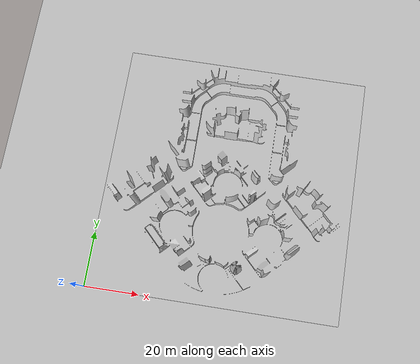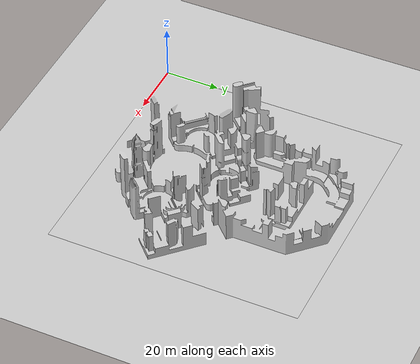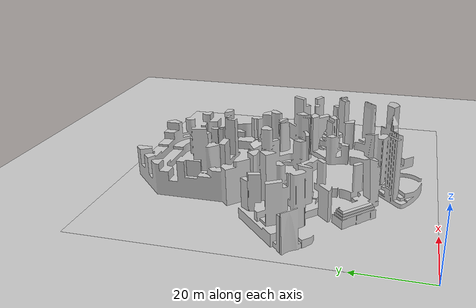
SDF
<?xml version="1.0" ?>
<sdf version="1.9">
  <world name="city_1_small_world">
    <physics type="ode">
      <max_step_size>0.001</max_step_size>
      <real_time_factor>1.0</real_time_factor>
      <real_time_update_rate>1000</real_time_update_rate>
    </physics>
    <plugin name='gz::sim::systems::Physics' filename='libgz-sim-physics-system.so'/>
    <plugin name='gz::sim::systems::UserCommands' filename='libgz-sim-user-commands-system.so'/>
    <plugin name='gz::sim::systems::SceneBroadcaster' filename='libgz-sim-scene-broadcaster-system.so'/>
    <plugin name='gz::sim::systems::Contact' filename='libgz-sim-contact-system.so'/>
    <plugin name='gz::sim::systems::Imu' filename='libgz-sim-imu-system.so'/>
    <plugin name='gz::sim::systems::AirPressure' filename='libgz-sim-air-pressure-system.so'/>
    <plugin name='gz::sim::systems::Sensors' filename='libgz-sim-sensors-system.so'>
      <render_engine>ogre2</render_engine>
    </plugin>
    <gravity>0 0 -9.80665</gravity>
    <magnetic_field>6e-06 2.3e-05 -4.2e-05</magnetic_field>
    <atmosphere type='adiabatic'/>
    <scene>
      <grid>false</grid>
      <ambient>0.4 0.4 0.4 1</ambient>
      <background>0.7 0.7 0.7 1</background>
      <shadows>true</shadows>
    </scene>
    <model name="ground_plane">
      <pose>50 50 0 0 0 0</pose>
      <static>true</static>
      <link name="link">
        <collision name="collision">
          <geometry>
            <plane>
              <normal>0 0 1</normal>
              <size>100 100</size>
            </plane>
          </geometry>
        </collision>
        <visual name="visual">
          <geometry>
            <plane>
              <normal>0 0 1</normal>
              <size>100 100</size>
            </plane>
          </geometry>
          <material>
            <ambient>0.8 0.8 0.8 1</ambient>
            <diffuse>0.8 0.8 0.8 1</diffuse>
            <specular>0.8 0.8 0.8 1</specular>
          </material>
        </visual>
      </link>
    </model>
    <include>
      <pose>0 0 0 0 0 0</pose>
      <uri>model://city_1_small</uri>
    </include>
    <light type="directional" name="sun">
      <cast_shadows>true</cast_shadows>
      <pose>0 0 100 0 0 0</pose>
      <diffuse>0.8 0.8 0.8 1</diffuse>
      <specular>0.2 0.2 0.2 1</specular>
      <attenuation>
        <range>1000</range>
        <constant>0.9</constant>
        <linear>0.01</linear>
        <quadratic>0.001</quadratic>
      </attenuation>
      <direction>-0.5 0.1 -0.9</direction>
    </light>
  </world>
</sdf>

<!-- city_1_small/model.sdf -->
<sdf version="1.9">
  <model name="city_1_small">
    <static>true</static>
    <link name="link">
      <collision name="collision">
        <geometry>
          <mesh>
            <uri>model://city_1_small/meshes/city_1_small.stl</uri>
          </mesh>
        </geometry>
      </collision>
      <visual name="visual">
        <geometry>
          <mesh>
            <uri>model://city_1_small/meshes/city_1_small.stl</uri>
          </mesh>
        </geometry>
        <material>
            <ambient>0.8 0.8 0.8 1</ambient>
            <diffuse>0.8 0.8 0.8 1</diffuse>
            <specular>0.8 0.8 0.8 1</specular>
        </material>
      </visual>
    </link>
  </model>
</sdf>
